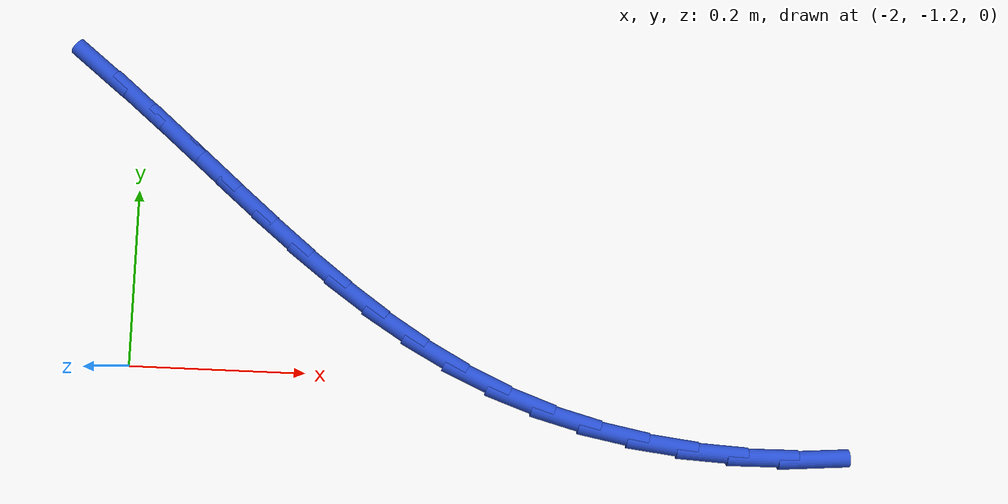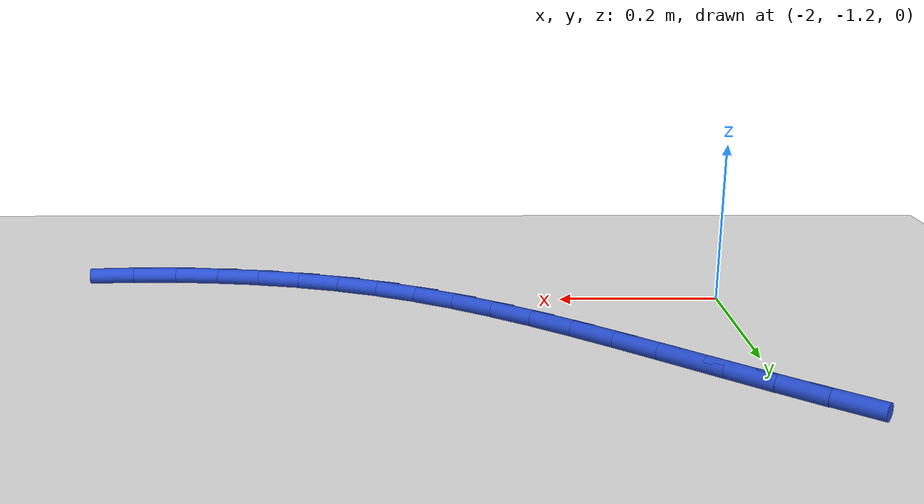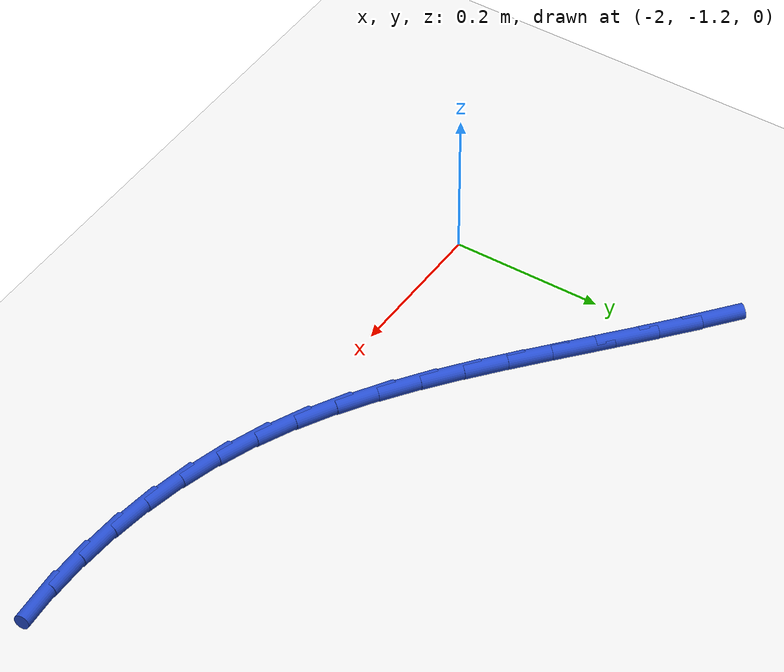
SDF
<sdf version="1.6">
 <world name="default">
  <model name="ground_plane">
   <static>1</static>
   <link name="link">
    <collision name="collision">
     <geometry><plane><normal>0 0 1</normal><size>100 100</size></plane></geometry>
     <surface><friction><ode><mu>100</mu><mu2>50</mu2></ode></friction></surface>
    </collision>
    <visual name="visual">
     <cast_shadows>0</cast_shadows>
     <geometry><plane><normal>0 0 1</normal><size>100 100</size></plane></geometry>
     <material>
      <script><uri>file://media/materials/scripts/gazebo.material</uri><name>Gazebo/WhiteGlow</name></script>
     </material>
    </visual>
   </link>
  </model>
  <model name="line">
   <link name="link_89">
    <pose>-2.0480033885293136 -0.8618052257664532 0.01 0 1.57 -0.6742733085509361</pose>
    <collision name="collision">
     <geometry><cylinder><radius>0.01</radius><length>0.08</length></cylinder></geometry>
    </collision>
    <visual name="visual">
     <material>
      <script><name>Gazebo/Blue</name><uri>file://media/materials/scripts/gazebo.material</uri></script>
     </material>
     <geometry><cylinder><radius>0.01</radius><length>0.08</length></cylinder></geometry>
    </visual>
   </link>
   <link name="link_90">
    <pose>-2.003829259722579 -0.897110663490079 0.01 0 1.57 -0.6955656067983585</pose>
    <collision name="collision">
     <geometry><cylinder><radius>0.01</radius><length>0.08</length></cylinder></geometry>
    </collision>
    <visual name="visual">
     <material>
      <script><name>Gazebo/Blue</name><uri>file://media/materials/scripts/gazebo.material</uri></script>
     </material>
     <geometry><cylinder><radius>0.01</radius><length>0.08</length></cylinder></geometry>
    </visual>
   </link>
   <link name="link_91">
    <pose>-1.9604250103140832 -0.9333417602540657 0.01 0 1.57 -0.7070415735488543</pose>
    <collision name="collision">
     <geometry><cylinder><radius>0.01</radius><length>0.08</length></cylinder></geometry>
    </collision>
    <visual name="visual">
     <material>
      <script><name>Gazebo/Blue</name><uri>file://media/materials/scripts/gazebo.material</uri></script>
     </material>
     <geometry><cylinder><radius>0.01</radius><length>0.08</length></cylinder></geometry>
    </visual>
   </link>
   <link name="link_92">
    <pose>-1.9175025264815806 -0.9700146281484743 0.01 0 1.57 -0.7082830364420636</pose>
    <collision name="collision">
     <geometry><cylinder><radius>0.01</radius><length>0.08</length></cylinder></geometry>
    </collision>
    <visual name="visual">
     <material>
      <script><name>Gazebo/Blue</name><uri>file://media/materials/scripts/gazebo.material</uri></script>
     </material>
     <geometry><cylinder><radius>0.01</radius><length>0.08</length></cylinder></geometry>
    </visual>
   </link>
   <link name="link_93">
    <pose>-1.8747579308373246 -1.0066274099605879 0.01 0 1.57 -0.6992004326001741</pose>
    <collision name="collision">
     <geometry><cylinder><radius>0.01</radius><length>0.08</length></cylinder></geometry>
    </collision>
    <visual name="visual">
     <material>
      <script><name>Gazebo/Blue</name><uri>file://media/materials/scripts/gazebo.material</uri></script>
     </material>
     <geometry><cylinder><radius>0.01</radius><length>0.08</length></cylinder></geometry>
    </visual>
   </link>
   <link name="link_94">
    <pose>-1.8318873459935687 -1.0426782484776895 0.01 0 1.57 -0.6796038084589646</pose>
    <collision name="collision">
     <geometry><cylinder><radius>0.01</radius><length>0.08</length></cylinder></geometry>
    </collision>
    <visual name="visual">
     <material>
      <script><name>Gazebo/Blue</name><uri>file://media/materials/scripts/gazebo.material</uri></script>
     </material>
     <geometry><cylinder><radius>0.01</radius><length>0.08</length></cylinder></geometry>
    </visual>
   </link>
   <link name="link_95">
    <pose>-1.788586894562568 -1.0776652864870633 0.01 0 1.57 -0.649227998624624</pose>
    <collision name="collision">
     <geometry><cylinder><radius>0.01</radius><length>0.08</length></cylinder></geometry>
    </collision>
    <visual name="visual">
     <material>
      <script><name>Gazebo/Blue</name><uri>file://media/materials/scripts/gazebo.material</uri></script>
     </material>
     <geometry><cylinder><radius>0.01</radius><length>0.08</length></cylinder></geometry>
    </visual>
   </link>
   <link name="link_96">
    <pose>-1.744552699156577 -1.1110866667759907 0.01 0 1.57 -0.6077953881525934</pose>
    <collision name="collision">
     <geometry><cylinder><radius>0.01</radius><length>0.08</length></cylinder></geometry>
    </collision>
    <visual name="visual">
     <material>
      <script><name>Gazebo/Blue</name><uri>file://media/materials/scripts/gazebo.material</uri></script>
     </material>
     <geometry><cylinder><radius>0.01</radius><length>0.08</length></cylinder></geometry>
    </visual>
   </link>
   <link name="link_97">
    <pose>-1.6994808823878493 -1.1424405321317557 0.01 0 1.57 -0.5551239194677678</pose>
    <collision name="collision">
     <geometry><cylinder><radius>0.01</radius><length>0.08</length></cylinder></geometry>
    </collision>
    <visual name="visual">
     <material>
      <script><name>Gazebo/Blue</name><uri>file://media/materials/scripts/gazebo.material</uri></script>
     </material>
     <geometry><cylinder><radius>0.01</radius><length>0.08</length></cylinder></geometry>
    </visual>
   </link>
   <link name="link_98">
    <pose>-1.6530675668686405 -1.1712250253416416 0.01 0 1.57 -0.49128415737784753</pose>
    <collision name="collision">
     <geometry><cylinder><radius>0.01</radius><length>0.08</length></cylinder></geometry>
    </collision>
    <visual name="visual">
     <material>
      <script><name>Gazebo/Blue</name><uri>file://media/materials/scripts/gazebo.material</uri></script>
     </material>
     <geometry><cylinder><radius>0.01</radius><length>0.08</length></cylinder></geometry>
    </visual>
   </link>
   <link name="link_99">
    <pose>-1.605008875211203 -1.1969382891929308 0.01 0 1.57 -0.41680457798762716</pose>
    <collision name="collision">
     <geometry><cylinder><radius>0.01</radius><length>0.08</length></cylinder></geometry>
    </collision>
    <visual name="visual">
     <material>
      <script><name>Gazebo/Blue</name><uri>file://media/materials/scripts/gazebo.material</uri></script>
     </material>
     <geometry><cylinder><radius>0.01</radius><length>0.08</length></cylinder></geometry>
    </visual>
   </link>
   <link name="link_100">
    <pose>-1.5550014121170057 -1.2190788593980357 0.01 0 1.57 -0.3363887432320146</pose>
    <collision name="collision">
     <geometry><cylinder><radius>0.01</radius><length>0.08</length></cylinder></geometry>
    </collision>
    <visual name="visual">
     <material>
      <script><name>Gazebo/Blue</name><uri>file://media/materials/scripts/gazebo.material</uri></script>
     </material>
     <geometry><cylinder><radius>0.01</radius><length>0.08</length></cylinder></geometry>
    </visual>
   </link>
   <link name="link_101">
    <pose>-1.5029200888723342 -1.237290599827893 0.01 0 1.57 -0.2594275384594313</pose>
    <collision name="collision">
     <geometry><cylinder><radius>0.01</radius><length>0.08</length></cylinder></geometry>
    </collision>
    <visual name="visual">
     <material>
      <script><name>Gazebo/Blue</name><uri>file://media/materials/scripts/gazebo.material</uri></script>
     </material>
     <geometry><cylinder><radius>0.01</radius><length>0.08</length></cylinder></geometry>
    </visual>
   </link>
   <link name="link_102">
    <pose>-1.4490837776722774 -1.2515792231399046 0.01 0 1.57 -0.1866732219268665</pose>
    <collision name="collision">
     <geometry><cylinder><radius>0.01</radius><length>0.08</length></cylinder></geometry>
    </collision>
    <visual name="visual">
     <material>
      <script><name>Gazebo/Blue</name><uri>file://media/materials/scripts/gazebo.material</uri></script>
     </material>
     <geometry><cylinder><radius>0.01</radius><length>0.08</length></cylinder></geometry>
    </visual>
   </link>
   <link name="link_103">
    <pose>-1.3938792907954014 -1.262005816318965 0.01 0 1.57 -0.11738171754753637</pose>
    <collision name="collision">
     <geometry><cylinder><radius>0.01</radius><length>0.08</length></cylinder></geometry>
    </collision>
    <visual name="visual">
     <material>
      <script><name>Gazebo/Blue</name><uri>file://media/materials/scripts/gazebo.material</uri></script>
     </material>
     <geometry><cylinder><radius>0.01</radius><length>0.08</length></cylinder></geometry>
    </visual>
   </link>
   <link name="link_104">
    <pose>-1.337693440520272 -1.2686314663499685 0.01 0 1.57 -0.05078007409524697</pose>
    <collision name="collision">
     <geometry><cylinder><radius>0.01</radius><length>0.08</length></cylinder></geometry>
    </collision>
    <visual name="visual">
     <material>
      <script><name>Gazebo/Blue</name><uri>file://media/materials/scripts/gazebo.material</uri></script>
     </material>
     <geometry><cylinder><radius>0.01</radius><length>0.08</length></cylinder></geometry>
    </visual>
   </link>
   <link name="link_105">
    <pose>-1.2809130391254568 -1.27151726021781 0.01 0 1.57 0.013913844783224443</pose>
    <collision name="collision">
     <geometry><cylinder><radius>0.01</radius><length>0.08</length></cylinder></geometry>
    </collision>
    <visual name="visual">
     <material>
      <script><name>Gazebo/Blue</name><uri>file://media/materials/scripts/gazebo.material</uri></script>
     </material>
     <geometry><cylinder><radius>0.01</radius><length>0.08</length></cylinder></geometry>
    </visual>
   </link>
   <link name="link_106">
    <pose>-1.2239248988895222 -1.2707242849073834 0.01 0 1.57 0.07748458521382497</pose>
    <collision name="collision">
     <geometry><cylinder><radius>0.01</radius><length>0.08</length></cylinder></geometry>
    </collision>
    <visual name="visual">
     <material>
      <script><name>Gazebo/Blue</name><uri>file://media/materials/scripts/gazebo.material</uri></script>
     </material>
     <geometry><cylinder><radius>0.01</radius><length>0.08</length></cylinder></geometry>
    </visual>
   </link>
  </model>
 </world>
</sdf>
